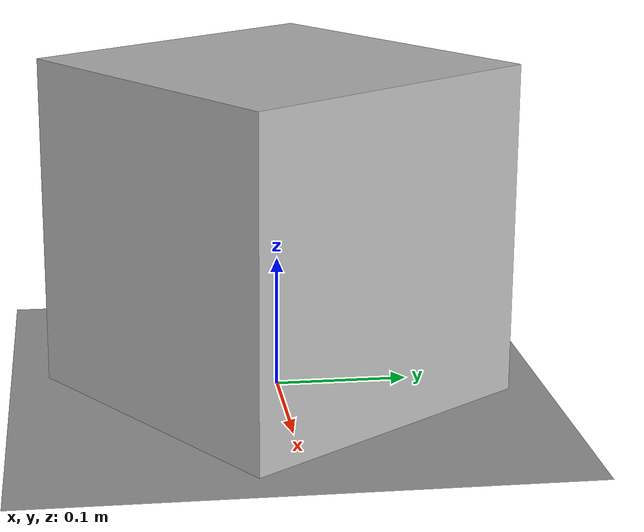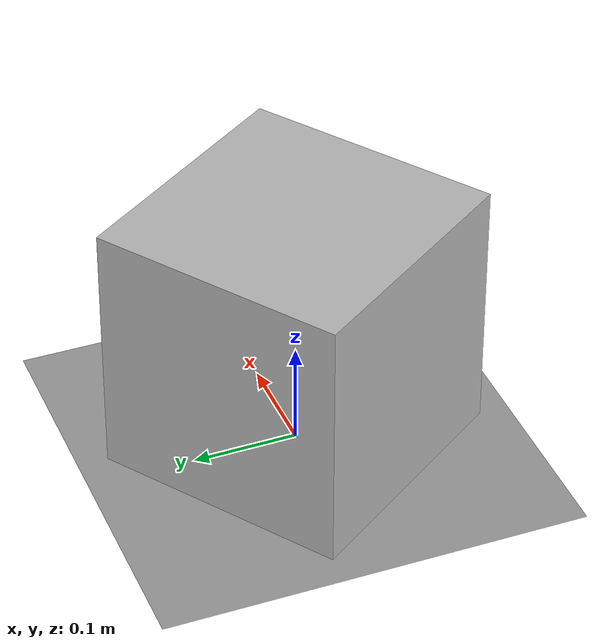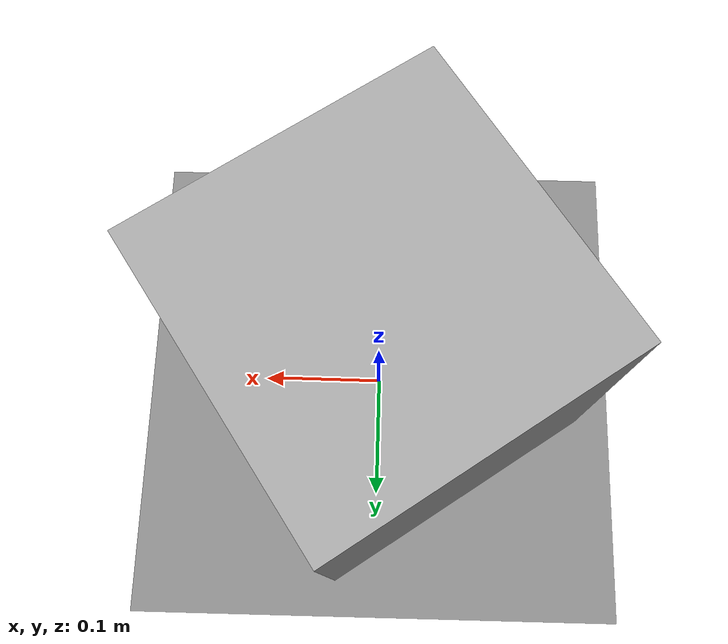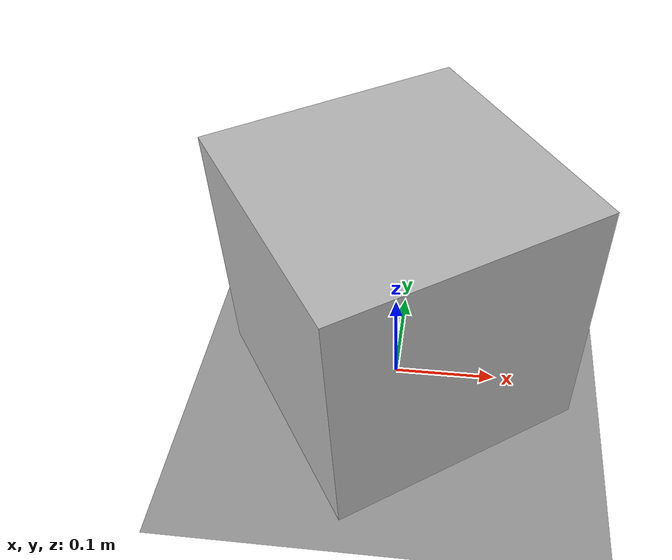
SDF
<?xml version="1.0" ?>
<sdf version="1.6">
    <world name="default">
        <gui>
            <camera name='user_camera'>
                <projection_type>orthographic</projection_type>
                <pose frame=''>0 0 1.02 0 1.565065 1.565065</pose>
            </camera>
        </gui>
        <physics name="ode" type="ode">
            <ode>
                <constraints>
                    <contact_max_correcting_vel>0</contact_max_correcting_vel>
                </constraints>
            </ode>
        </physics>
        <include>
            <uri>model://victor_table_plane</uri>
        </include>
        <include>
            <uri>model://sun</uri>
        </include>
        <plugin name="collision_map_plugin" filename="libcollision_map_plugin.so"/>
        <include>
            <uri>model://movable_box</uri>
            <pose>0 0 0 0 0 0.6</pose>
            <name>box</name>
        </include>
    </world>
</sdf>

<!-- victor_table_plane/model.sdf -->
<sdf version="1.5">
    <model name="ground_plane">
        <static>true</static>
        <link name="link">
            <collision name="collision">
                <geometry>
                    <plane>
                        <normal>0 0 1</normal>
                        <size>100 100</size>
                    </plane>
                </geometry>
                <surface>
                    <friction>
                        <ode>
                            <mu>1000</mu>
                            <mu2>1000</mu2>
                        </ode>
                    </friction>
                    <contact>
                        <ode>
                            <min_depth>0.005</min_depth>
                        </ode>
                    </contact>
                </surface>
            </collision>
            <visual name="visual">
                <cast_shadows>false</cast_shadows>
                <geometry>
                    <plane>
                        <normal>0 0 1</normal>
                        <size>100 100</size>
                    </plane>
                </geometry>
                <material>
                    <script>
                        <uri>file://media/materials/scripts/gazebo.material</uri>
                        <name>Gazebo/Gray</name>
                    </script>
                </material>
            </visual>
        </link>
    </model>
</sdf>

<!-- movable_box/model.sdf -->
<sdf version="1.4">
    <model name="moving_box">
        <link name="link_1">
            <inertial>
                <pose>0 0 0.125 0 0 0</pose>
                <inertia>
                    <ixx>0.0208333</ixx>
                    <ixy>0</ixy>
                    <ixz>0</ixz>
                    <iyy>0.0208333</iyy>
                    <iyz>0</iyz>
                    <izz>0.0208333</izz>
                </inertia>
                <mass>2</mass>
            </inertial>
            <visual name="visual">
                <pose>0 0 0.125 0 0 0</pose>
                <geometry>
                    <box>
                        <size>0.25 0.25 0.25</size>
                    </box>
                </geometry>
            </visual>
            <collision name="box_collision">
                <pose>0 0 0.125 0 0 0</pose>
                <geometry>
                    <box>
                        <size>0.25 0.25 0.25</size>
                    </box>
                </geometry>
                <surface>
                    <friction>
                        <ode>
                            <mu>5.0</mu>
                            <mu2>5.0</mu2>
                        </ode>
                    </friction>
                </surface>
            </collision>
        </link>
        <plugin name='position_3d_plugin' filename='libposition_3d_plugin.so'>
            <kP_pos>5</kP_pos>
            <kI_pos>0.0</kI_pos>
            <kD_pos>0.0</kD_pos>
            <kP_vel>100.0</kP_vel>
            <kI_vel>0.0</kI_vel>
            <kD_vel>0.0</kD_vel>
            <max_force>15.0</max_force>
            <max_vel>0.5</max_vel>
            <kP_rot>0.1</kP_rot>
            <kI_rot>0.0</kI_rot>
            <kD_rot>0.0</kD_rot>
            <kP_rot_vel>0.0</kP_rot_vel>
            <kI_rot_vel>0.0</kI_rot_vel>
            <kD_rot_vel>0.0</kD_rot_vel>
            <max_torque>0.0</max_torque>
            <max_rot_vel>0.0</max_rot_vel>
            <link>link_1</link>
        </plugin>
    </model>
</sdf>
